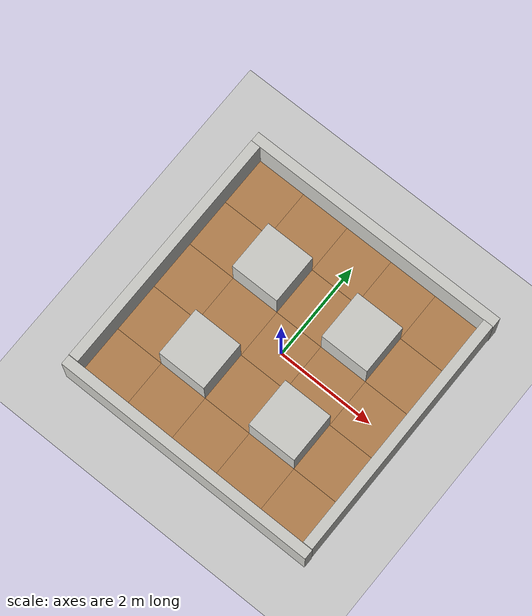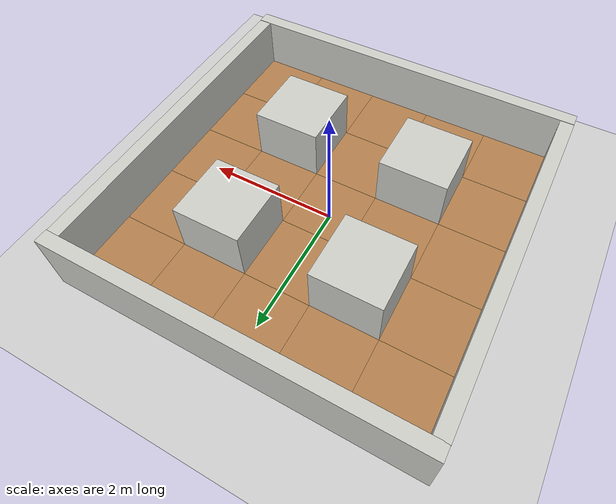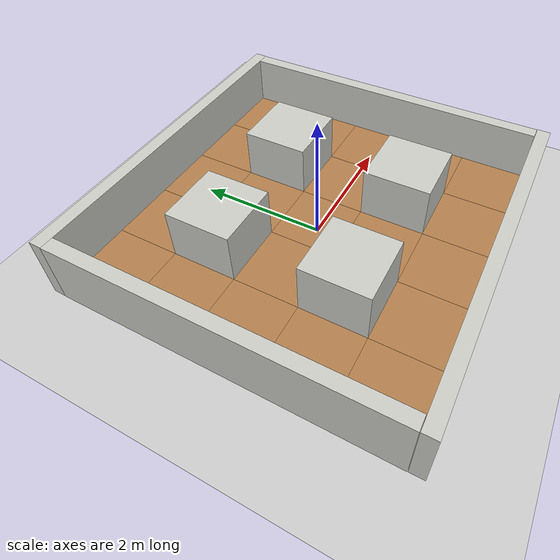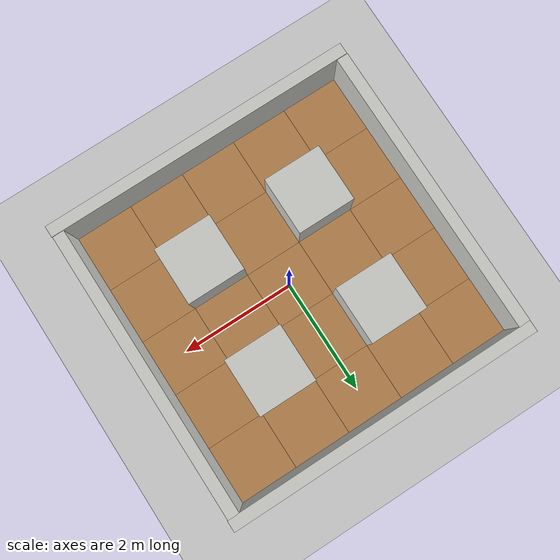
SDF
<sdf version="1.6">
 <world name="default">
  <light name="sun" type="directional">
   <pose>0 0 10 0 -0 0</pose>
   <diffuse>0.8 0.8 0.8 1</diffuse>
   <specular>0.1 0.1 0.1 1</specular>
   <attenuation>
    <range>1000</range>
    <constant>0.9</constant>
    <linear>0.01</linear>
    <quadratic>0.001</quadratic>
   </attenuation>
   <direction>-0.5 0.5 -1</direction>
  </light>
  <model name="ground_plane">
   <static>1</static>
   <link name="link">
    <collision name="collision">
     <geometry><plane><normal>0 0 1</normal><size>100 100</size></plane></geometry>
     <surface><friction><ode><mu>100</mu><mu2>50</mu2></ode></friction></surface>
    </collision>
    <visual name="visual">
     <cast_shadows>0</cast_shadows>
     <geometry><plane><normal>0 0 1</normal><size>100 100</size></plane></geometry>
     <material>
      <script><uri>file://media/materials/scripts/gazebo.material</uri><name>Gazebo/Grey</name></script>
     </material>
    </visual>
   </link>
  </model>
  <gravity>0 0 -9.8</gravity>
  <magnetic_field>6e-06 2.3e-05 -4.2e-05</magnetic_field>
  <atmosphere type="adiabatic"/>
  <physics name="default_physics" default="0" type="ode">
   <max_step_size>0.001</max_step_size>
   <real_time_factor>1</real_time_factor>
   <real_time_update_rate>1000</real_time_update_rate>
  </physics>
  <scene><ambient>0.4 0.4 0.4 1</ambient><background>0.7 0.7 0.7 1</background><shadows>1</shadows></scene>
  <spherical_coordinates>
   <surface_model>EARTH_WGS84</surface_model>
   <latitude_deg>0</latitude_deg>
   <longitude_deg>0</longitude_deg>
   <elevation>0</elevation>
   <heading_deg>0</heading_deg>
  </spherical_coordinates>
  <model name="mobility_5x5m_walled">
   <link name="Wall_18">
    <collision name="Wall_18_Collision">
     <geometry><box><size>1 1 0.2</size></box></geometry>
     <pose>0 0 0.1 0 -0 0</pose>
    </collision>
    <visual name="Wall_18_Visual">
     <pose>0 0 0.1 0 -0 0</pose>
     <geometry><box><size>1 1 0.2</size></box></geometry>
     <material>
      <script><uri>file://media/materials/scripts/gazebo.material</uri><name>Gazebo/Wood</name></script>
      <ambient>0.996078 0.47451 0.0196078 1</ambient>
     </material>
    </visual>
    <pose>-0.007885 0.005807 0 0 -0 0</pose>
   </link>
   <link name="Wall_20">
    <collision name="Wall_20_Collision">
     <geometry><box><size>1 1 1</size></box></geometry>
     <pose>0 0 0.5 0 -0 0</pose>
    </collision>
    <visual name="Wall_20_Visual">
     <pose>0 0 0.5 0 -0 0</pose>
     <geometry><box><size>1 1 1</size></box></geometry>
     <material>
      <script><uri>file://media/materials/scripts/gazebo.material</uri><name>Gazebo/CeilingTiled</name></script>
      <ambient>1 0.764706 0.305882 1</ambient>
     </material>
    </visual>
    <pose>0.992115 1.00581 0 0 -0 0</pose>
   </link>
   <link name="Wall_22">
    <collision name="Wall_22_Collision">
     <geometry><box><size>1 1 1</size></box></geometry>
     <pose>0 0 0.5 0 -0 0</pose>
    </collision>
    <visual name="Wall_22_Visual">
     <pose>0 0 0.5 0 -0 0</pose>
     <geometry><box><size>1 1 1</size></box></geometry>
     <material>
      <script><uri>file://media/materials/scripts/gazebo.material</uri><name>Gazebo/CeilingTiled</name></script>
      <ambient>1 0.764706 0.305882 1</ambient>
     </material>
    </visual>
    <pose>-1.00788 -0.994193 0 0 -0 0</pose>
   </link>
   <link name="Wall_24">
    <collision name="Wall_24_Collision">
     <geometry><box><size>1 1 1</size></box></geometry>
     <pose>0 0 0.5 0 -0 0</pose>
    </collision>
    <visual name="Wall_24_Visual">
     <pose>0 0 0.5 0 -0 0</pose>
     <geometry><box><size>1 1 1</size></box></geometry>
     <material>
      <script><uri>file://media/materials/scripts/gazebo.material</uri><name>Gazebo/CeilingTiled</name></script>
      <ambient>1 0.764706 0.305882 1</ambient>
     </material>
    </visual>
    <pose>-1.00788 1.00581 0 0 -0 0</pose>
   </link>
   <link name="Wall_26">
    <collision name="Wall_26_Collision">
     <geometry><box><size>1 1 1</size></box></geometry>
     <pose>0 0 0.5 0 -0 0</pose>
    </collision>
    <visual name="Wall_26_Visual">
     <pose>0 0 0.5 0 -0 0</pose>
     <geometry><box><size>1 1 1</size></box></geometry>
     <material>
      <script><uri>file://media/materials/scripts/gazebo.material</uri><name>Gazebo/CeilingTiled</name></script>
      <ambient>1 0.764706 0.305882 1</ambient>
     </material>
    </visual>
    <pose>0.992115 -0.994193 0 0 -0 0</pose>
   </link>
   <link name="Wall_28">
    <collision name="Wall_28_Collision">
     <geometry><box><size>1 1 0.2</size></box></geometry>
     <pose>0 0 0.1 0 -0 0</pose>
    </collision>
    <visual name="Wall_28_Visual">
     <pose>0 0 0.1 0 -0 0</pose>
     <geometry><box><size>1 1 0.2</size></box></geometry>
     <material>
      <script><uri>file://media/materials/scripts/gazebo.material</uri><name>Gazebo/Wood</name></script>
      <ambient>0.921569 0.807843 0.615686 1</ambient>
     </material>
    </visual>
    <pose>0.992115 0.005807 0 0 -0 0</pose>
   </link>
   <link name="Wall_30">
    <collision name="Wall_30_Collision">
     <geometry><box><size>1 1 0.2</size></box></geometry>
     <pose>0 0 0.1 0 -0 0</pose>
    </collision>
    <visual name="Wall_30_Visual">
     <pose>0 0 0.1 0 -0 0</pose>
     <geometry><box><size>1 1 0.2</size></box></geometry>
     <material>
      <script><uri>file://media/materials/scripts/gazebo.material</uri><name>Gazebo/Wood</name></script>
      <ambient>0.921569 0.807843 0.615686 1</ambient>
     </material>
    </visual>
    <pose>-0.007885 1.00581 0 0 -0 0</pose>
   </link>
   <link name="Wall_32">
    <collision name="Wall_32_Collision">
     <geometry><box><size>1 1 0.2</size></box></geometry>
     <pose>0 0 0.1 0 -0 0</pose>
    </collision>
    <visual name="Wall_32_Visual">
     <pose>0 0 0.1 0 -0 0</pose>
     <geometry><box><size>1 1 0.2</size></box></geometry>
     <material>
      <script><uri>file://media/materials/scripts/gazebo.material</uri><name>Gazebo/Wood</name></script>
      <ambient>0.921569 0.807843 0.615686 1</ambient>
     </material>
    </visual>
    <pose>-0.007885 -0.994193 0 0 -0 0</pose>
   </link>
   <link name="Wall_34">
    <collision name="Wall_34_Collision">
     <geometry><box><size>1 1 0.2</size></box></geometry>
     <pose>0 0 0.1 0 -0 0</pose>
    </collision>
    <visual name="Wall_34_Visual">
     <pose>0 0 0.1 0 -0 0</pose>
     <geometry><box><size>1 1 0.2</size></box></geometry>
     <material>
      <script><uri>file://media/materials/scripts/gazebo.material</uri><name>Gazebo/Wood</name></script>
      <ambient>0.921569 0.807843 0.615686 1</ambient>
     </material>
    </visual>
    <pose>-1.00788 0.005807 0 0 -0 0</pose>
   </link>
   <link name="Wall_36">
    <collision name="Wall_36_Collision">
     <geometry><box><size>1 1 0.2</size></box></geometry>
     <pose>0 0 0.1 0 -0 0</pose>
    </collision>
    <visual name="Wall_36_Visual">
     <pose>0 0 0.1 0 -0 0</pose>
     <geometry><box><size>1 1 0.2</size></box></geometry>
     <material>
      <script><uri>file://media/materials/scripts/gazebo.material</uri><name>Gazebo/Wood</name></script>
      <ambient>0.996078 0.47451 0.0196078 1</ambient>
     </material>
    </visual>
    <pose>-0.007885 2.00581 0 0 -0 0</pose>
   </link>
   <link name="Wall_38">
    <collision name="Wall_38_Collision">
     <geometry><box><size>1 1 0.2</size></box></geometry>
     <pose>0 0 0.1 0 -0 0</pose>
    </collision>
    <visual name="Wall_38_Visual">
     <pose>0 0 0.1 0 -0 0</pose>
     <geometry><box><size>1 1 0.2</size></box></geometry>
     <material>
      <script><uri>file://media/materials/scripts/gazebo.material</uri><name>Gazebo/Wood</name></script>
      <ambient>0.996078 0.47451 0.0196078 1</ambient>
     </material>
    </visual>
    <pose>-0.007885 -1.99419 0 0 -0 0</pose>
   </link>
   <link name="Wall_40">
    <collision name="Wall_40_Collision">
     <geometry><box><size>1 1 0.2</size></box></geometry>
     <pose>0 0 0.1 0 -0 0</pose>
    </collision>
    <visual name="Wall_40_Visual">
     <pose>0 0 0.1 0 -0 0</pose>
     <geometry><box><size>1 1 0.2</size></box></geometry>
     <material>
      <script><uri>file://media/materials/scripts/gazebo.material</uri><name>Gazebo/Wood</name></script>
      <ambient>0.996078 0.47451 0.0196078 1</ambient>
     </material>
    </visual>
    <pose>1.99212 0.005807 0 0 -0 0</pose>
   </link>
   <link name="Wall_42">
    <collision name="Wall_42_Collision">
     <geometry><box><size>1 1 0.2</size></box></geometry>
     <pose>0 0 0.1 0 -0 0</pose>
    </collision>
    <visual name="Wall_42_Visual">
     <pose>0 0 0.1 0 -0 0</pose>
     <geometry><box><size>1 1 0.2</size></box></geometry>
     <material>
      <script><uri>file://media/materials/scripts/gazebo.material</uri><name>Gazebo/Wood</name></script>
      <ambient>0.996078 0.47451 0.0196078 1</ambient>
     </material>
    </visual>
    <pose>-2.00788 0.005807 0 0 -0 0</pose>
   </link>
   <link name="Wall_44">
    <collision name="Wall_44_Collision">
     <geometry><box><size>1 1 0.2</size></box></geometry>
     <pose>0 0 0.1 0 -0 0</pose>
    </collision>
    <visual name="Wall_44_Visual">
     <pose>0 0 0.1 0 -0 0</pose>
     <geometry><box><size>1 1 0.2</size></box></geometry>
     <material>
      <script><uri>file://media/materials/scripts/gazebo.material</uri><name>Gazebo/Wood</name></script>
      <ambient>0.921569 0.807843 0.615686 1</ambient>
     </material>
    </visual>
    <pose>0.992115 2.00581 0 0 -0 0</pose>
   </link>
   <link name="Wall_46">
    <collision name="Wall_46_Collision">
     <geometry><box><size>1 1 0.2</size></box></geometry>
     <pose>0 0 0.1 0 -0 0</pose>
    </collision>
    <visual name="Wall_46_Visual">
     <pose>0 0 0.1 0 -0 0</pose>
     <geometry><box><size>1 1 0.2</size></box></geometry>
     <material>
      <script><uri>file://media/materials/scripts/gazebo.material</uri><name>Gazebo/Wood</name></script>
      <ambient>0.921569 0.807843 0.615686 1</ambient>
     </material>
    </visual>
    <pose>-1.00788 2.00581 0 0 -0 0</pose>
   </link>
   <link name="Wall_48">
    <collision name="Wall_48_Collision">
     <geometry><box><size>1 1 0.2</size></box></geometry>
     <pose>0 0 0.1 0 -0 0</pose>
    </collision>
    <visual name="Wall_48_Visual">
     <pose>0 0 0.1 0 -0 0</pose>
     <geometry><box><size>1 1 0.2</size></box></geometry>
     <material>
      <script><uri>file://media/materials/scripts/gazebo.material</uri><name>Gazebo/Wood</name></script>
      <ambient>0.921569 0.807843 0.615686 1</ambient>
     </material>
    </visual>
    <pose>1.99212 1.00581 0 0 -0 0</pose>
   </link>
   <link name="Wall_50">
    <collision name="Wall_50_Collision">
     <geometry><box><size>1 1 0.2</size></box></geometry>
     <pose>0 0 0.1 0 -0 0</pose>
    </collision>
    <visual name="Wall_50_Visual">
     <pose>0 0 0.1 0 -0 0</pose>
     <geometry><box><size>1 1 0.2</size></box></geometry>
     <material>
      <script><uri>file://media/materials/scripts/gazebo.material</uri><name>Gazebo/Wood</name></script>
      <ambient>0.921569 0.807843 0.615686 1</ambient>
     </material>
    </visual>
    <pose>1.99212 -0.994193 0 0 -0 0</pose>
   </link>
   <link name="Wall_52">
    <collision name="Wall_52_Collision">
     <geometry><box><size>1 1 0.2</size></box></geometry>
     <pose>0 0 0.1 0 -0 0</pose>
    </collision>
    <visual name="Wall_52_Visual">
     <pose>0 0 0.1 0 -0 0</pose>
     <geometry><box><size>1 1 0.2</size></box></geometry>
     <material>
      <script><uri>file://media/materials/scripts/gazebo.material</uri><name>Gazebo/Wood</name></script>
      <ambient>0.921569 0.807843 0.615686 1</ambient>
     </material>
    </visual>
    <pose>0.992115 -1.99419 0 0 -0 0</pose>
   </link>
   <link name="Wall_54">
    <collision name="Wall_54_Collision">
     <geometry><box><size>1 1 0.2</size></box></geometry>
     <pose>0 0 0.1 0 -0 0</pose>
    </collision>
    <visual name="Wall_54_Visual">
     <pose>0 0 0.1 0 -0 0</pose>
     <geometry><box><size>1 1 0.2</size></box></geometry>
     <material>
      <script><uri>file://media/materials/scripts/gazebo.material</uri><name>Gazebo/Wood</name></script>
      <ambient>0.921569 0.807843 0.615686 1</ambient>
     </material>
    </visual>
    <pose>-1.00788 -1.99419 0 0 -0 0</pose>
   </link>
   <link name="Wall_56">
    <collision name="Wall_56_Collision">
     <geometry><box><size>1 1 0.2</size></box></geometry>
     <pose>0 0 0.1 0 -0 0</pose>
    </collision>
    <visual name="Wall_56_Visual">
     <pose>0 0 0.1 0 -0 0</pose>
     <geometry><box><size>1 1 0.2</size></box></geometry>
     <material>
      <script><uri>file://media/materials/scripts/gazebo.material</uri><name>Gazebo/Wood</name></script>
      <ambient>0.921569 0.807843 0.615686 1</ambient>
     </material>
    </visual>
    <pose>-2.00788 1.00581 0 0 -0 0</pose>
   </link>
   <link name="Wall_58">
    <collision name="Wall_58_Collision">
     <geometry><box><size>1 1 0.2</size></box></geometry>
     <pose>0 0 0.1 0 -0 0</pose>
    </collision>
    <visual name="Wall_58_Visual">
     <pose>0 0 0.1 0 -0 0</pose>
     <geometry><box><size>1 1 0.2</size></box></geometry>
     <material>
      <script><uri>file://media/materials/scripts/gazebo.material</uri><name>Gazebo/Wood</name></script>
      <ambient>0.921569 0.807843 0.615686 1</ambient>
     </material>
    </visual>
    <pose>-2.00788 -0.994193 0 0 -0 0</pose>
   </link>
   <link name="Wall_60">
    <collision name="Wall_60_Collision">
     <geometry><box><size>1 1 0.2</size></box></geometry>
     <pose>0 0 0.1 0 -0 0</pose>
    </collision>
    <visual name="Wall_60_Visual">
     <pose>0 0 0.1 0 -0 0</pose>
     <geometry><box><size>1 1 0.2</size></box></geometry>
     <material>
      <script><uri>file://media/materials/scripts/gazebo.material</uri><name>Gazebo/Wood</name></script>
      <ambient>0.996078 0.47451 0.0196078 1</ambient>
     </material>
    </visual>
    <pose>1.99212 2.00581 0 0 -0 0</pose>
   </link>
   <link name="Wall_62">
    <collision name="Wall_62_Collision">
     <geometry><box><size>1 1 0.2</size></box></geometry>
     <pose>0 0 0.1 0 -0 0</pose>
    </collision>
    <visual name="Wall_62_Visual">
     <pose>0 0 0.1 0 -0 0</pose>
     <geometry><box><size>1 1 0.2</size></box></geometry>
     <material>
      <script><uri>file://media/materials/scripts/gazebo.material</uri><name>Gazebo/Wood</name></script>
      <ambient>0.996078 0.47451 0.0196078 1</ambient>
     </material>
    </visual>
    <pose>-2.00788 -1.99419 0 0 -0 0</pose>
   </link>
   <link name="Wall_64">
    <collision name="Wall_64_Collision">
     <geometry><box><size>1 1 0.2</size></box></geometry>
     <pose>0 0 0.1 0 -0 0</pose>
    </collision>
    <visual name="Wall_64_Visual">
     <pose>0 0 0.1 0 -0 0</pose>
     <geometry><box><size>1 1 0.2</size></box></geometry>
     <material>
      <script><uri>file://media/materials/scripts/gazebo.material</uri><name>Gazebo/Wood</name></script>
      <ambient>0.996078 0.47451 0.0196078 1</ambient>
     </material>
    </visual>
    <pose>1.99212 -1.99419 0 0 -0 0</pose>
   </link>
   <link name="Wall_66">
    <collision name="Wall_66_Collision">
     <geometry><box><size>1 1 0.2</size></box></geometry>
     <pose>0 0 0.1 0 -0 0</pose>
    </collision>
    <visual name="Wall_66_Visual">
     <pose>0 0 0.1 0 -0 0</pose>
     <geometry><box><size>1 1 0.2</size></box></geometry>
     <material>
      <script><uri>file://media/materials/scripts/gazebo.material</uri><name>Gazebo/Wood</name></script>
      <ambient>0.996078 0.47451 0.0196078 1</ambient>
     </material>
    </visual>
    <pose>-2.00788 2.00581 0 0 -0 0</pose>
   </link>
   <link name="Wall_68">
    <collision name="Wall_68_Collision">
     <geometry><box><size>5 0.2 1</size></box></geometry>
     <pose>0 0 0.5 0 -0 0</pose>
    </collision>
    <visual name="Wall_68_Visual">
     <pose>0 0 0.5 0 -0 0</pose>
     <geometry><box><size>5 0.2 1</size></box></geometry>
     <material>
      <script><uri>file://media/materials/scripts/gazebo.material</uri><name>Gazebo/CeilingTiled</name></script>
      <ambient>1 0.764706 0.305882 1</ambient>
     </material>
    </visual>
    <pose>2.59212 0.005807 0 0 0 -1.5708</pose>
   </link>
   <link name="Wall_70">
    <collision name="Wall_70_Collision">
     <geometry><box><size>5 0.2 1</size></box></geometry>
     <pose>0 0 0.5 0 -0 0</pose>
    </collision>
    <visual name="Wall_70_Visual">
     <pose>0 0 0.5 0 -0 0</pose>
     <geometry><box><size>5 0.2 1</size></box></geometry>
     <material>
      <script><uri>file://media/materials/scripts/gazebo.material</uri><name>Gazebo/CeilingTiled</name></script>
      <ambient>1 0.764706 0.305882 1</ambient>
     </material>
    </visual>
    <pose>-2.60196 0.006957 0 0 0 -1.5708</pose>
   </link>
   <link name="Wall_72">
    <collision name="Wall_72_Collision">
     <geometry><box><size>5.4 0.2 1</size></box></geometry>
     <pose>0 0 0.5 0 -0 0</pose>
    </collision>
    <visual name="Wall_72_Visual">
     <pose>0 0 0.5 0 -0 0</pose>
     <geometry><box><size>5.4 0.2 1</size></box></geometry>
     <material>
      <script><uri>file://media/materials/scripts/gazebo.material</uri><name>Gazebo/CeilingTiled</name></script>
      <ambient>1 0.764706 0.305882 1</ambient>
     </material>
    </visual>
    <pose>0.001957 2.6 0 0 -0 0</pose>
   </link>
   <link name="Wall_74">
    <collision name="Wall_74_Collision">
     <geometry><box><size>5.4 0.2 1</size></box></geometry>
     <pose>0 0 0.5 0 -0 0</pose>
    </collision>
    <visual name="Wall_74_Visual">
     <pose>0 0 0.5 0 -0 0</pose>
     <geometry><box><size>5.4 0.2 1</size></box></geometry>
     <material>
      <script><uri>file://media/materials/scripts/gazebo.material</uri><name>Gazebo/CeilingTiled</name></script>
      <ambient>1 0.764706 0.305882 1</ambient>
     </material>
    </visual>
    <pose>0.001957 -2.6 0 0 -0 0</pose>
   </link>
   <static>1</static>
  </model>
 </world>
</sdf>
